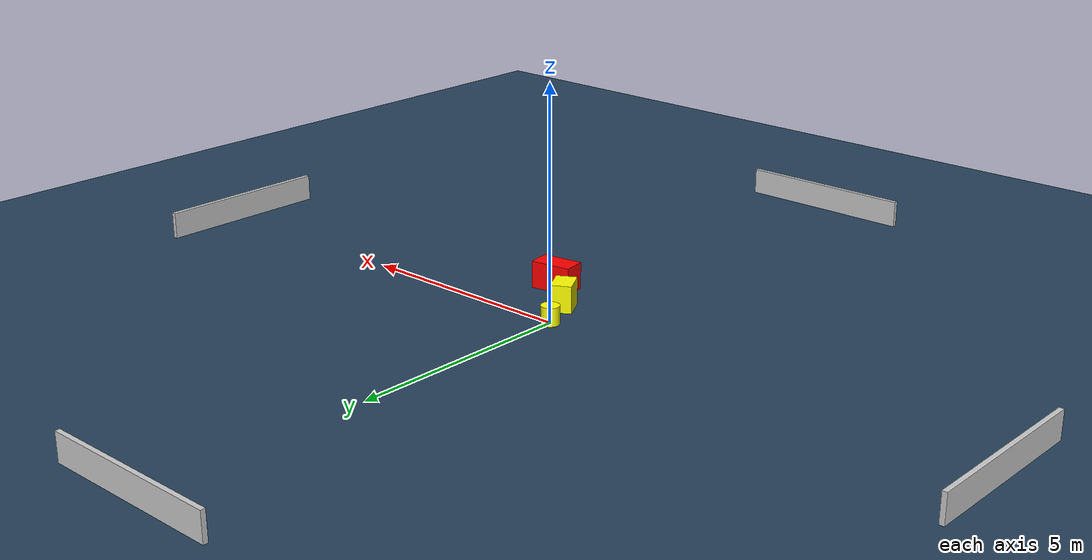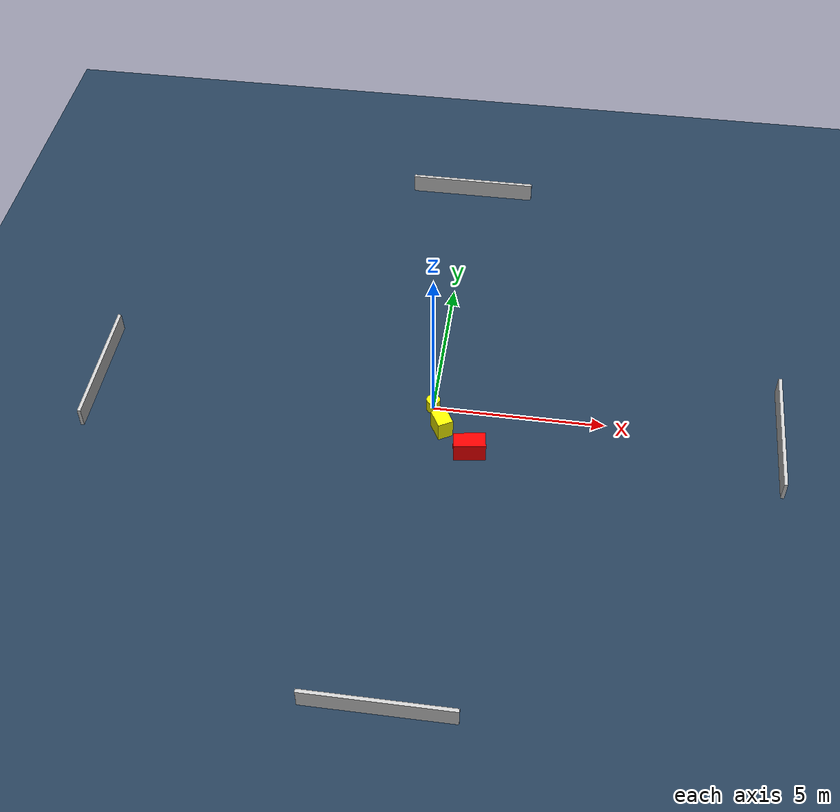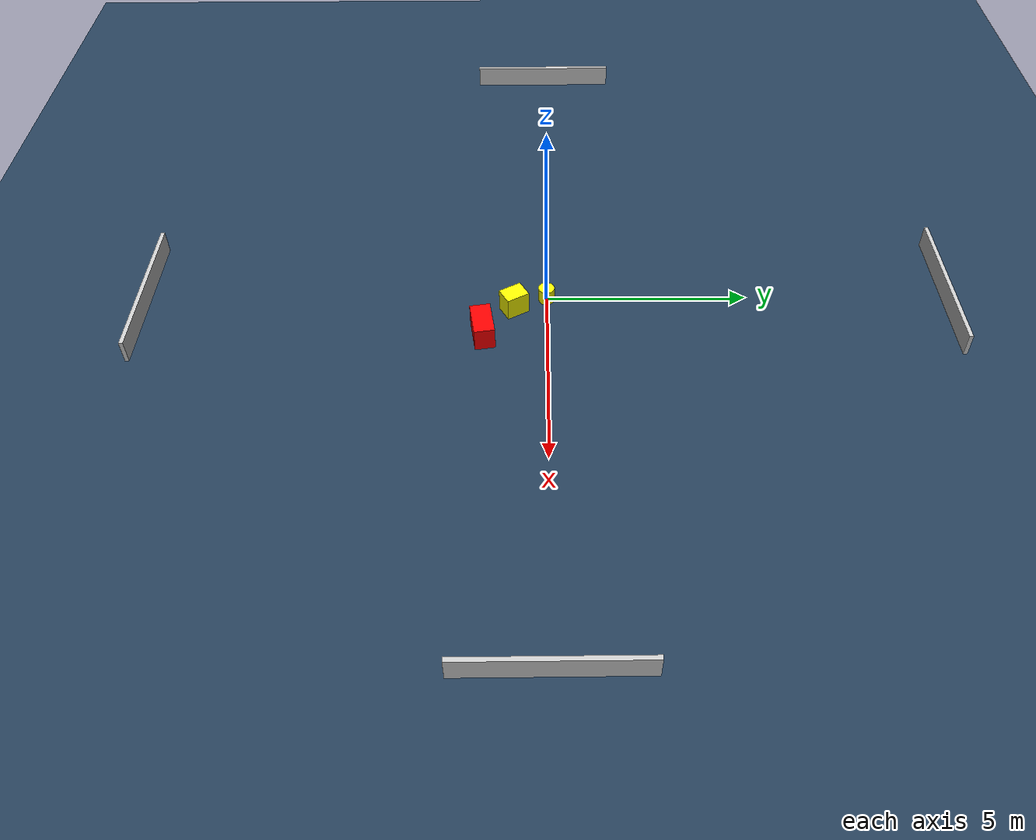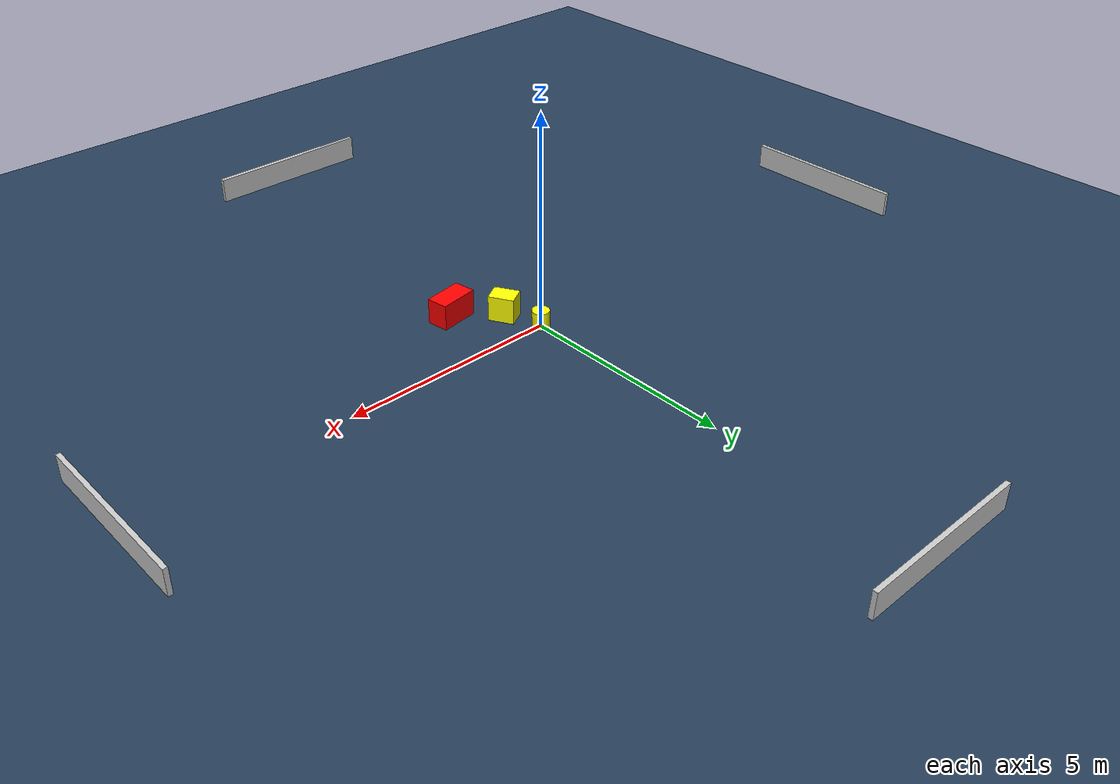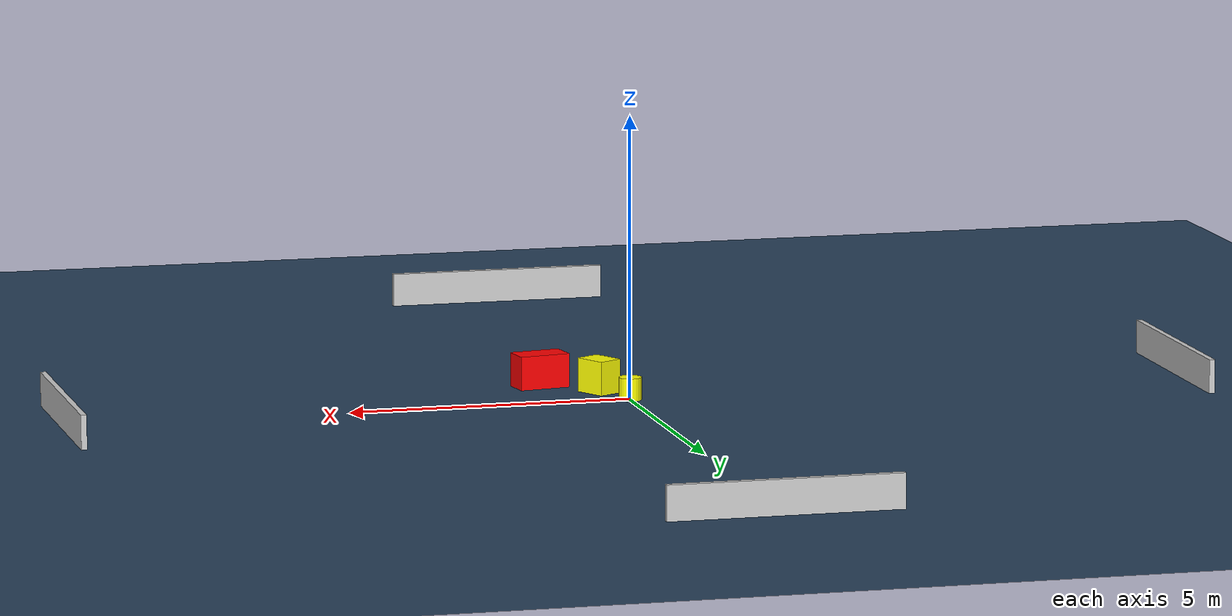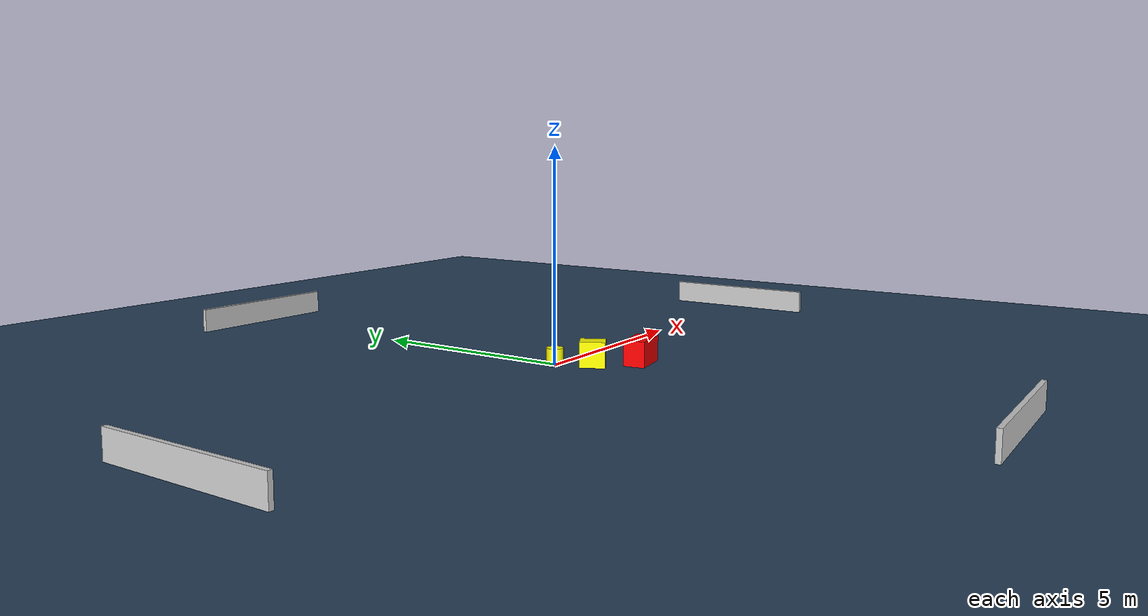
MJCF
<?xml version="1.0" ?>
<mujoco model="generated_environment">
  <option timestep="0.01" integrator="RK4" cone="elliptic"/>
  <default>
    <geom density="1"/>
  </default>
  <asset>
    <texture builtin="gradient" height="3072" name="skybox" rgb1="0.3 0.5 0.7" rgb2="0 0 0" type="skybox" width="512"/>
    <texture builtin="checker" height="300" name="groundplane" rgb1="0.2 0.3 0.4" rgb2="0.1 0.2 0.3" type="2d" width="300"/>
    <material name="groundplane" reflectance="0.2" texrepeat="5 5" texture="groundplane"/>
  </asset>
  <worldbody>
    <light dir="0 0 -1" directional="true" pos="0 0 1.5"/>
    <geom condim="3" friction="0.5 0.005 0.001" material="groundplane" name="floor" pos="0 0 0" size="0 0 0.05" type="plane"/>
    <body name="walls">
      <geom name="wall_1" condim="4" pos="-10.0 0.0 0.3" rgba="0.800000011920929 0.800000011920929 0.800000011920929 1.0" size="0.05 2.0 0.3" type="box"/>
      <geom name="wall_2" condim="4" pos="10.0 0.0 0.3" rgba="0.800000011920929 0.800000011920929 0.800000011920929 1.0" size="0.05 2.0 0.3" type="box"/>
      <geom name="wall_3" condim="4" pos="0.0 -10.0 0.3" rgba="0.800000011920929 0.800000011920929 0.800000011920929 1.0" size="2.0 0.05 0.3" type="box"/>
      <geom name="wall_4" condim="4" pos="0.0 10.0 0.3" rgba="0.800000011920929 0.800000011920929 0.800000011920929 1.0" size="2.0 0.05 0.3" type="box"/>
    </body>
    <body name="robot">
      <joint name="joint_x" type="slide" pos="0 0 0" axis="1 0 0"/>
      <joint name="joint_y" type="slide" pos="0 0 0" axis="0 1 0"/>
      <geom name="robot" type="cylinder" pos="0.0 0.0 0.2" size="0.2 0.2 0.0" mass="5.0" friction="1.0 0.005 0.0001" condim="4" rgba="1.0 1.0 0.0 1.0"/>
    </body>
    <body name="obstacle_1_movable">
      <geom name="obstacle_1_movable" condim="4" pos="0.35543494164803546 -0.8069188123941962 0.3" euler="0 0 29.38108982985307" friction="0.0 0.005 0.001" rgba="1.0 1.0 0.0 1.0" size="0.22633538654843713 0.2948759177681264 0.3" type="box" mass="0.1"/>
      <joint type="free"/>
    </body>
    <body name="obstacle_2_static">
      <geom name="obstacle_2_static" condim="4" pos="1.2411616728831767 -1.5631174316083523 0.3" euler="0 0 8.900847086413247" friction="0.0 0.005 0.001" rgba="1.0 0.0 0.0 1.0" size="0.45493705192329154 0.2507067607661273 0.3" type="box"/>
    </body>
  </worldbody>
  <actuator>
    <motor name="actuator_x" joint="joint_x" gear="1" ctrlrange="-1 1"/>
    <motor name="actuator_y" joint="joint_y" gear="1" ctrlrange="-1 1"/>
  </actuator>
</mujoco>
